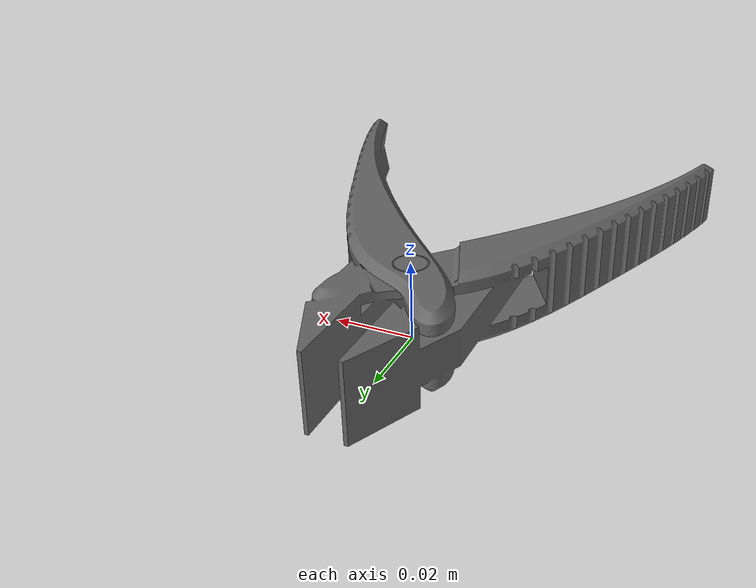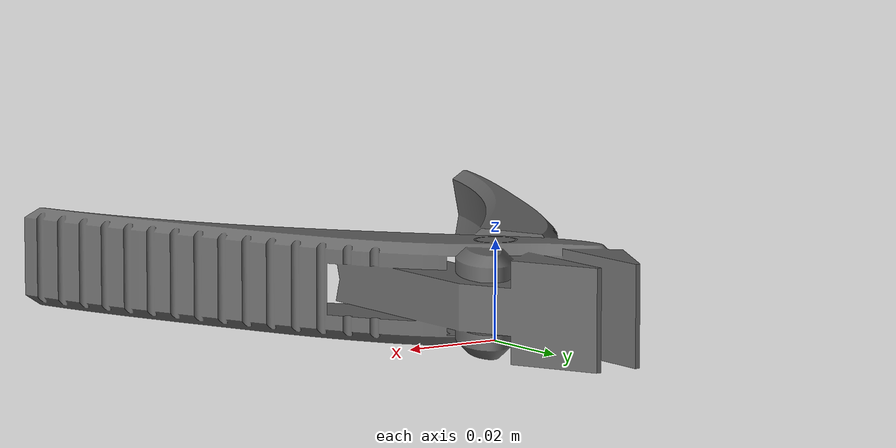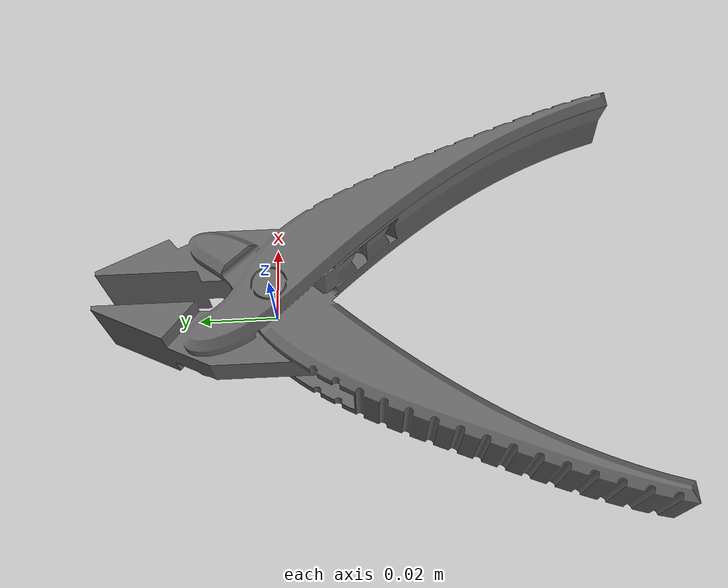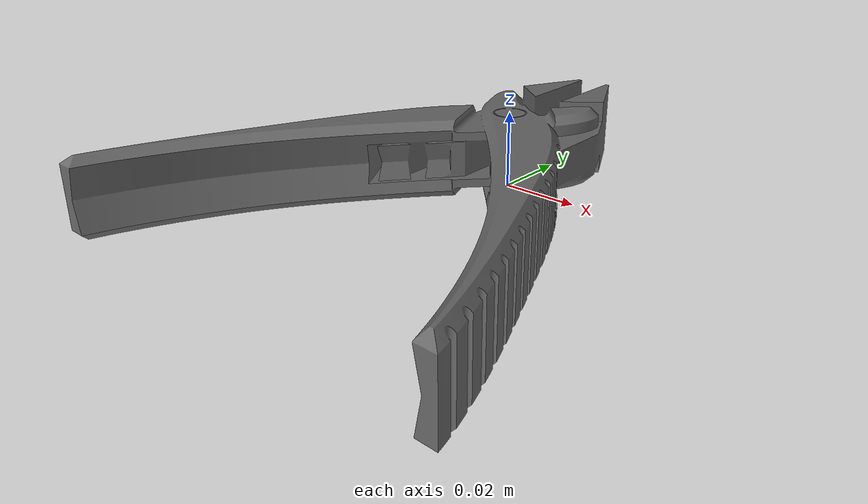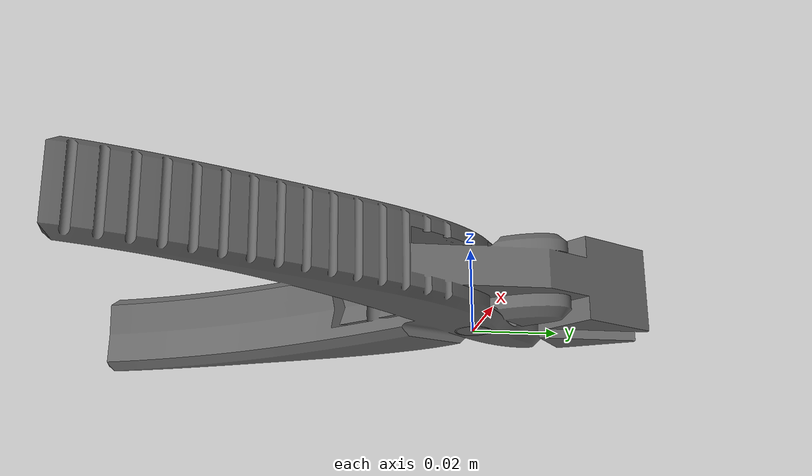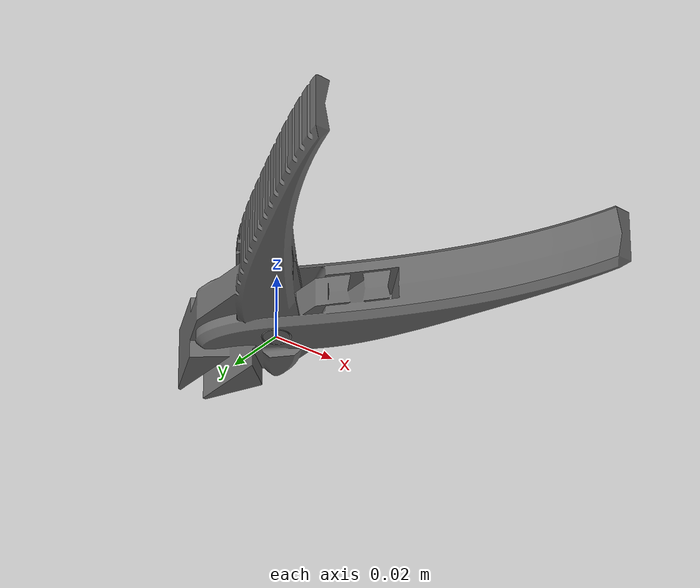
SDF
<?xml version="1.0" ?>
<sdf version="1.4">
  <model name="challenge_pincers">
    <static>false</static>
    <link name="link">
      <inertial>
        <mass>0.25</mass>
        <inertia>
          <ixx>0.0005</ixx>
          <ixy>0.0</ixy>
          <ixz>0.0</ixz>
          <iyy>0.0007</iyy>
          <iyz>0.0</iyz>
          <izz>0.00015</izz>
        </inertia>
      </inertial>

      <!-- Collision -->
      <collision name="collision">
        <geometry>
          <mesh>
            <uri>model://challenge_pincers/mesh/challenge_pincers.stl</uri>
            <scale>0.001 0.001 0.001</scale>
          </mesh>
        </geometry>
        <surface>
          <friction>
            <ode>
              <mu>1.5</mu>
              <mu2>1.5</mu2>
              <fdir1>0 0 0</fdir1>
            </ode>
          </friction>
          <contact>
            <ode>
              <kp>5000000.0</kp>
              <kd>500.0</kd>
              <min_depth>0.001</min_depth>
              <max_vel>0.5</max_vel>
            </ode>
          </contact>
        </surface>
      </collision>

      <!-- Visual -->
      <visual name="visual">
        <geometry>
          <mesh>
            <uri>model://challenge_pincers/mesh/challenge_pincers.stl</uri>
            <scale>0.001 0.001 0.001</scale>
          </mesh>
        </geometry>
        <material>
          <ambient>0.2 0.2 0.2 1</ambient>    <!-- Dark gray -->
          <diffuse>0.4 0.4 0.4 1</diffuse>    <!-- Brushed steel look -->
          <specular>0.7 0.7 0.7 1</specular>  <!-- Shiny metallic -->
          <emissive>0 0 0 1</emissive>
        </material>
      </visual>

      <!-- Other physics properties -->
      <velocity_decay>
        <linear>0.0</linear>
        <angular>0.0</angular>
      </velocity_decay>
      <self_collide>false</self_collide>
      <kinematic>false</kinematic>
      <gravity>true</gravity>
    </link>
  </model>
</sdf>
